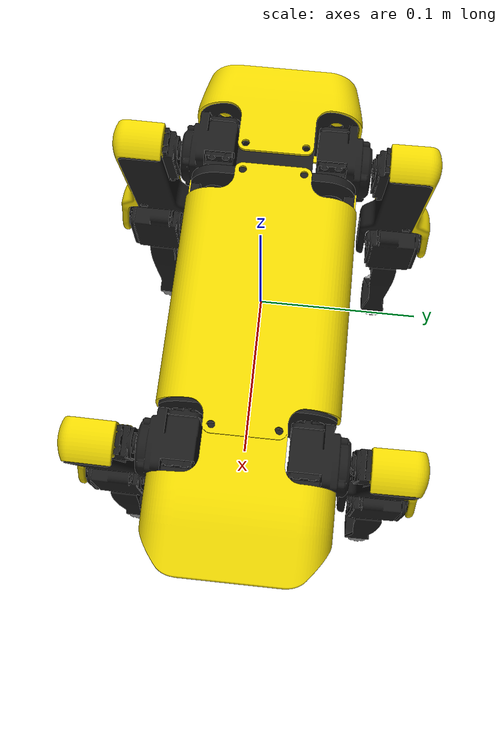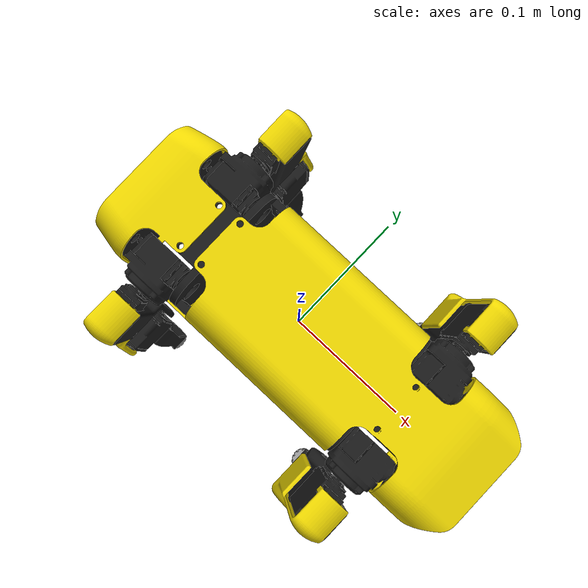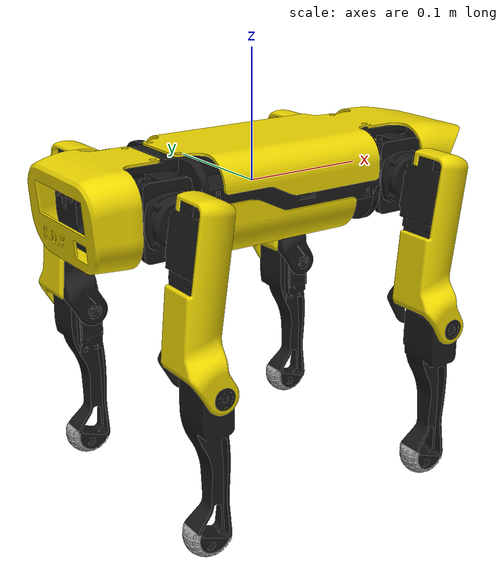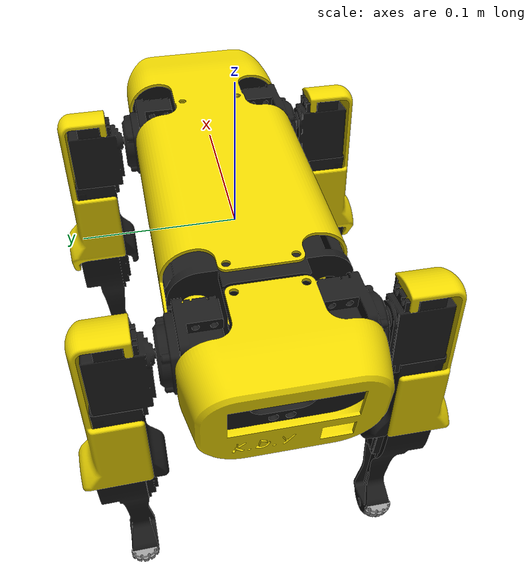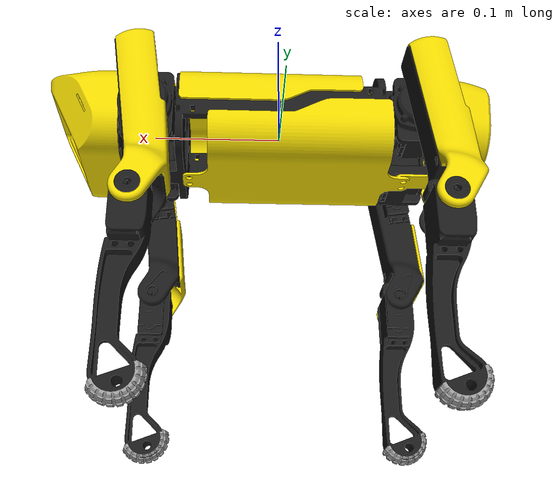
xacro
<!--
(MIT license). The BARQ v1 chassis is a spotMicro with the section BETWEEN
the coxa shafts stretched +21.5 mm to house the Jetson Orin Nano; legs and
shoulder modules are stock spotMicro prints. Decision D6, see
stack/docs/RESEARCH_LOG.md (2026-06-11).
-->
<?xml version="1.0"?>
<robot xmlns:xacro="http://www.ros.org/wiki/xacro" name="barq_v1">

  <xacro:arg name="mesh_prefix" default="stl"/>
  <xacro:property name="mesh" value="$(arg mesh_prefix)"/>

  <material name="yellow">
    <color rgba="0.92 0.83 0.0 1"/>
  </material>
  <material name="black">
    <color rgba="0.1 0.1 0.1 1"/>
  </material>
  <material name="grey">
    <color rgba="0.6 0.6 0.6 1"/>
  </material>

  <!-- Params -->

  <!-- BARQ v1: stretched center (upstream 0.140); carries the +21.5 mm -->
  <xacro:property name="body_length" value="0.1615" />
  <xacro:property name="body_width" value="0.110" />
  <xacro:property name="body_height" value="0.070" />

  <xacro:property name="front_length" value="0.058" />
  <xacro:property name="rear_length" value="0.040" />

  <xacro:property name="shoulder_length" value="0.044" />
  <xacro:property name="shoulder_width" value="0.038" />

  <xacro:property name="leg_length" value="0.1075" />
  <xacro:property name="foot_length" value="0.130" />

  <xacro:property name="toe_radius" value="0.020" />
  <xacro:property name="toe_width" value="0.020" />
  <xacro:property name="shift" value="0.055" />
  <!-- BARQ v1: coxa shaft at +/-103.75 mm (upstream 0.093) -> span 207.5 mm -->
  <xacro:property name="shiftx" value="0.10375" />
  <xacro:property name="shifty" value="0.039" />

  <!-- mainbody visual stretch: 0.1615/0.140 = 1.153571 -->
  <xacro:property name="body_stretch" value="1.153571" />

  <!-- Macros -->

  <!-- Sim-grade inertials (D-010): analytic box/sphere inertia about the
       link COM (taken as the collision-shape center). Masses are upstream
       guesses pending the Q-004 mass audit. -->
  <xacro:macro name="box_inertial" params="m x y z ox:=0 oy:=0 oz:=0">
    <inertial>
      <origin rpy="0 0 0" xyz="${ox} ${oy} ${oz}"/>
      <mass value="${m}"/>
      <inertia ixx="${m/12.0*(y*y+z*z)}" ixy="0" ixz="0"
               iyy="${m/12.0*(x*x+z*z)}" iyz="0"
               izz="${m/12.0*(x*x+y*y)}"/>
    </inertial>
  </xacro:macro>

  <xacro:macro name="sphere_inertial" params="m r ox:=0 oy:=0 oz:=0">
    <inertial>
      <origin rpy="0 0 0" xyz="${ox} ${oy} ${oz}"/>
      <mass value="${m}"/>
      <inertia ixx="${0.4*m*r*r}" ixy="0" ixz="0"
               iyy="${0.4*m*r*r}" iyz="0" izz="${0.4*m*r*r}"/>
    </inertial>
  </xacro:macro>

  <xacro:macro name="gen_shoulder" params="name left">
    <link name="${name}">
      <visual>
        <xacro:if value="${left}">
        <geometry>
          <mesh filename="${mesh}/lshoulder.stl" scale="0.001 0.001 0.001"/>
        </geometry>
        <origin rpy="0 0 3.14159" xyz="0.135 0.015 -0.01"/>
        </xacro:if>
        <xacro:unless value="${left}">
        <geometry>
          <mesh filename="${mesh}/rshoulder.stl" scale="0.001 0.001 0.001"/>
        </geometry>
        <origin rpy="0 0 3.14159" xyz="0.135 0.095 -0.01"/>
        </xacro:unless>
        <material name="black"/>
      </visual>
      <collision>
        <geometry>
          <box size="${shoulder_length} ${shoulder_width} ${body_height}"/>
        </geometry>
        <origin rpy="0 0 0" xyz="0 0 0"/>
      </collision>
      <xacro:box_inertial m="0.0815" x="${shoulder_length}" y="${shoulder_width}" z="${body_height}"/>
    </link>
  </xacro:macro>

  <xacro:macro name="gen_shoulder_joint" params="pos shiftx shifty">
    <joint name="${pos}_shoulder" type="revolute">
      <parent link="base_link"/>
      <child link="${pos}_shoulder_link"/>
      <axis xyz="1 0 0"/>
      <origin rpy="0 0 0" xyz="${shiftx} ${shifty} 0"/>
      <limit effort="1000.0" lower="-0.548" upper="0.548" velocity="0.7"/>
      <dynamics damping="0.0" friction="0.5"/>
    </joint>
  </xacro:macro>

  <xacro:macro name="gen_leg" params="name left">
    <link name="${name}_cover">
      <visual>
        <xacro:if value="${left}">
        <geometry>
          <mesh filename="${mesh}/larm_cover.stl" scale="0.001 0.001 0.001"/>
        </geometry>
        <origin rpy="0 -0.139 3.14159" xyz="0.130 -0.040 -0.025"/>
        </xacro:if>
        <xacro:unless value="${left}">
        <geometry>
          <mesh filename="${mesh}/rarm_cover.stl" scale="0.001 0.001 0.001"/>
        </geometry>
        <origin rpy="0 -0.139 3.14159" xyz="0.130 0.15 -0.025"/>
        </xacro:unless>
        <material name="yellow"/>
      </visual>
      <xacro:box_inertial m="0.0199" x="0.030" y="0.008" z="0.100" oz="-0.050"/>
    </link>
    <link name="${name}">
      <visual>
        <xacro:if value="${left}">
        <geometry>
          <mesh filename="${mesh}/larm.stl" scale="0.001 0.001 0.001"/>
        </geometry>
        <origin rpy="0 -0.139 3.14159" xyz="0.130 -0.040 -0.025"/>
        </xacro:if>
        <xacro:unless value="${left}">
        <geometry>
          <mesh filename="${mesh}/rarm.stl" scale="0.001 0.001 0.001"/>
        </geometry>
        <origin rpy="0 -0.139 3.14159" xyz="0.130 0.15 -0.025"/>
        </xacro:unless>
        <material name="black"/>
      </visual>
      <collision>
        <origin rpy="0.0 0.0 0.0" xyz="0.0 0.0 -0.050"/>
        <geometry>
          <box size="0.028 0.036 ${leg_length}"/>
        </geometry>
      </collision>
      <xacro:box_inertial m="0.1032" x="0.028" y="0.036" z="${leg_length}" oz="-0.050"/>
    </link>
  </xacro:macro>

  <xacro:macro name="gen_leg_joint" params="pos shift">
    <joint name="${pos}_leg" type="revolute">
      <parent link="${pos}_shoulder_link"/>
      <child link="${pos}_leg_link"/>
      <axis xyz="0 1 0"/>
      <origin rpy="0 0 0" xyz="0 ${shift} 0"/>
      <limit effort="1000.0" lower="-2.666" upper="1.548" velocity="0.5"/>
      <dynamics damping="0.0" friction="0.0"/>
    </joint>

    <joint name="${pos}_leg_cover_joint" type="fixed">
    <parent link="${pos}_leg_link"/>
    <child link="${pos}_leg_link_cover"/>
        <origin xyz="0 0 0"/>
  </joint>
  </xacro:macro>

  <xacro:macro name="gen_foot" params="name left">
    <link name="${name}">
      <visual>
        <xacro:if value="${left}">
        <geometry>
          <mesh filename="${mesh}/lfoot.stl" scale="0.001 0.001 0.001"/>
        </geometry>
        <origin rpy="0 0 3.14159" xyz="0.120 -0.04 0.1"/>
        </xacro:if>
        <xacro:unless value="${left}">
        <geometry>
          <mesh filename="${mesh}/rfoot.stl" scale="0.001 0.001 0.001"/>
        </geometry>
        <origin rpy="0 0 3.14159" xyz="0.120 0.15 0.1"/>
        </xacro:unless>
        <material name="black"/>
      </visual>
      <collision>
        <geometry>
          <box size="0.026 0.020 ${foot_length}"/>
        </geometry>
        <origin rpy="0.0 0.0 0.0" xyz="0.0 0.0 -0.050"/>
      </collision>
      <xacro:box_inertial m="0.0807" x="0.026" y="0.020" z="${foot_length}" oz="-0.050"/>
    </link>
  </xacro:macro>

  <xacro:macro name="gen_foot_joint" params="pos">
    <joint name="${pos}_foot" type="revolute">
      <parent link="${pos}_leg_link"/>
      <child link="${pos}_foot_link"/>
      <axis xyz="0 1 0"/>
      <origin rpy="0 0 0" xyz="0 0 -${leg_length}"/>
      <limit effort="1000.0" lower="-2.6" upper="0.1" velocity="0.5"/>
      <dynamics damping="0.0" friction="0.5"/>
    </joint>
  </xacro:macro>

  <xacro:macro name="gen_toe" params="name">
    <link name="${name}">
      <visual>
        <geometry>
        <mesh filename="${mesh}/foot.stl" scale="0.001 0.001 0.001"/>
        </geometry>
        <origin rpy="0 -0.40010 3.14159" xyz="0.00 0.01 0.015"/>
        <material name="grey"/>
      </visual>
      <collision>
        <geometry>
          <sphere radius="${toe_radius}" />
        </geometry>
        <origin rpy="0 0 0" xyz="0 0 ${toe_radius}"/>
        <contact_coefficients mu="1.1" />
      </collision>
      <xacro:sphere_inertial m="0.0063" r="${toe_radius}" oz="${toe_radius}"/>
    </link>
  </xacro:macro>

 <xacro:macro name="gen_toe_joint" params="pos">
    <joint name="${pos}_toe" type="fixed">
      <parent link="${pos}_foot_link"/>
      <child link="${pos}_toe_link"/>
      <origin xyz="0 0 -${foot_length}"/>
    </joint>
  </xacro:macro>

  <xacro:macro name="gen_full_leg_joint" params="pos shiftx shifty shift left">
    <xacro:gen_shoulder name="${pos}_shoulder_link" left="${left}"/>
    <xacro:gen_leg name="${pos}_leg_link" left="${left}"/>
    <xacro:gen_foot name="${pos}_foot_link" left="${left}"/>
    <xacro:gen_toe name="${pos}_toe_link"/>

    <xacro:gen_shoulder_joint pos="${pos}" shiftx="${shiftx}" shifty="${shifty}"/>
    <xacro:gen_leg_joint pos="${pos}" shift="${shift}"/>
    <xacro:gen_foot_joint pos="${pos}"/>
    <xacro:gen_toe_joint pos="${pos}"/>
  </xacro:macro>

  <!-- Robot Body -->

  <link name="base_link">
    <visual>
      <geometry>
        <!-- mainbody spans both hip housings; stretch only in x -->
        <mesh filename="${mesh}/mainbody.stl"
              scale="${0.001*body_stretch} 0.001 0.001"/>
      </geometry>
      <material name="black"/>
      <origin rpy="0 0 0" xyz="${-0.042*body_stretch} -0.055 -0.010"/>
    </visual>
    <collision>
      <geometry>
        <box size="${body_length} ${body_width} ${body_height}"/>
      </geometry>
      <origin rpy="0 0 0" xyz="0 0 0"/>
    </collision>
    <xacro:box_inertial m="0.522" x="${body_length}" y="${body_width}" z="${body_height}"/>
  </link>

  <link name="rear_link">
    <visual>
      <geometry>
        <mesh filename="${mesh}/backpart.stl" scale="0.001 0.001 0.001"/>
      </geometry>
      <!-- upstream 0.04 shifted -0.01075 with the rear shoulder -->
      <origin rpy="0 0 3.14159" xyz="0.02925 0.055 -0.010"/>
      <material name="yellow"/>
    </visual>
    <collision>
      <geometry>
        <box size="${rear_length} ${body_width} ${body_height}"/>
      </geometry>
      <!-- rear of body: outboard of the rear shoulder module -->
      <origin rpy="0 0 0" xyz="-0.14575 0 0"/>
    </collision>
    <xacro:box_inertial m="0.030" x="${rear_length}" y="${body_width}" z="${body_height}" ox="-0.14575"/>
  </link>
  <joint name="base_rear" type="fixed">
    <parent link="base_link"/>
    <child link="rear_link"/>
  </joint>

  <link name="front_link">
    <visual>
      <geometry>
        <mesh filename="${mesh}/frontpart.stl" scale="0.001 0.001 0.001"/>
      </geometry>
      <!-- upstream 0.040 shifted +0.01075 with the front shoulder -->
      <origin rpy="0 0 3.14159" xyz="0.05075 0.055 -0.010"/>
      <material name="yellow"/>
    </visual>
    <collision>
      <geometry>
        <box size="${front_length} ${body_width} ${body_height}"/>
      </geometry>
      <!-- front of body: outboard of the front shoulder module -->
      <origin rpy="0 0 0" xyz="0.15475 0 0"/>
    </collision>
    <xacro:box_inertial m="0.044" x="${front_length}" y="${body_width}" z="${body_height}" ox="0.15475"/>
  </link>
  <joint name="base_front" type="fixed">
    <parent link="base_link"/>
    <child link="front_link"/>
  </joint>

  <!-- create Legs -->

  <xacro:gen_full_leg_joint pos="front_left" shiftx="${shiftx}" shifty="${shifty}" shift="${shift}" left="true"/>
  <xacro:gen_full_leg_joint pos="front_right" shiftx="${shiftx}" shifty="-${shifty}" shift="-${shift}" left="false"/>
  <xacro:gen_full_leg_joint pos="rear_left" shiftx="-${shiftx}" shifty="${shifty}" shift="${shift}" left="true"/>
  <xacro:gen_full_leg_joint pos="rear_right" shiftx="-${shiftx}" shifty="-${shifty}" shift="-${shift}" left="false"/>

</robot>
